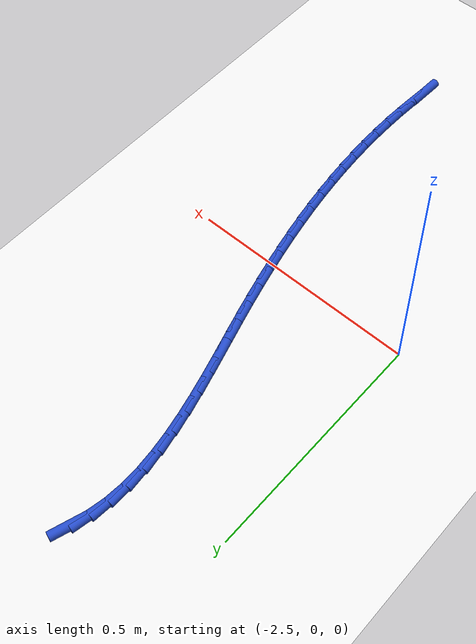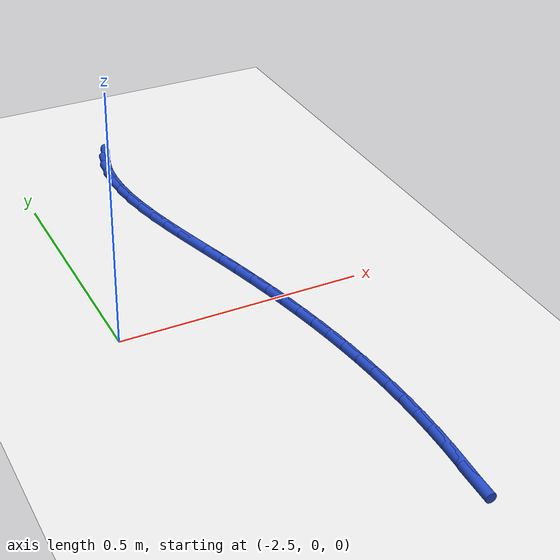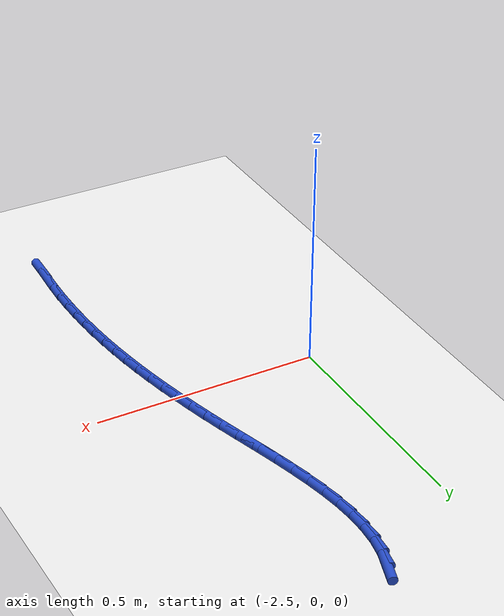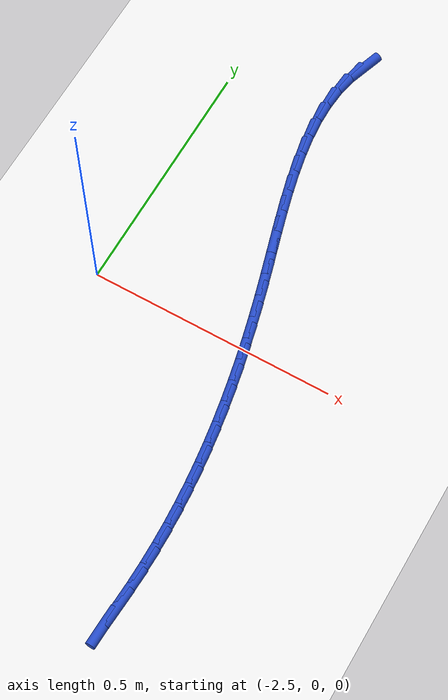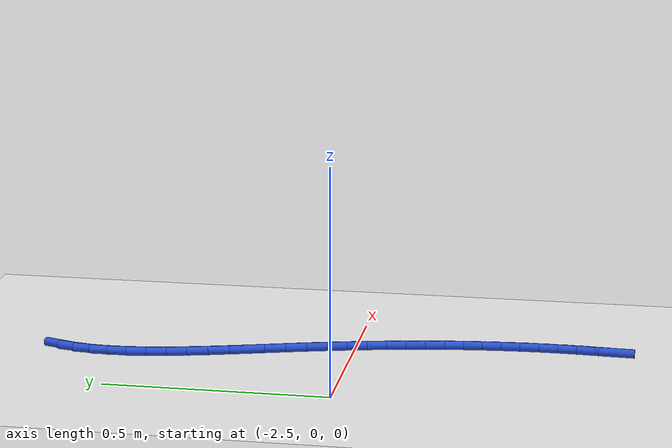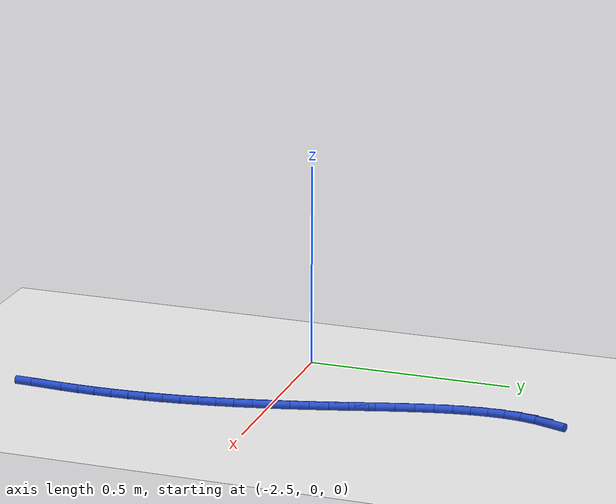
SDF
<sdf version="1.6">
 <world name="default">
  <model name="ground_plane">
   <static>1</static>
   <link name="link">
    <collision name="collision">
     <geometry><plane><normal>0 0 1</normal><size>100 100</size></plane></geometry>
     <surface><friction><ode><mu>100</mu><mu2>50</mu2></ode></friction></surface>
    </collision>
    <visual name="visual">
     <cast_shadows>0</cast_shadows>
     <geometry><plane><normal>0 0 1</normal><size>100 100</size></plane></geometry>
     <material>
      <script><uri>file://media/materials/scripts/gazebo.material</uri><name>Gazebo/WhiteGlow</name></script>
     </material>
    </visual>
   </link>
  </model>
  <model name="line">
   <link name="link_74">
    <pose>-2.276247300363723 0.6588571933269307 0.01 0 1.57 1.2483466097020197</pose>
    <collision name="collision">
     <geometry><cylinder><radius>0.01</radius><length>0.08</length></cylinder></geometry>
    </collision>
    <visual name="visual">
     <material>
      <script><name>Gazebo/Blue</name><uri>file://media/materials/scripts/gazebo.material</uri></script>
     </material>
     <geometry><cylinder><radius>0.01</radius><length>0.08</length></cylinder></geometry>
    </visual>
   </link>
   <link name="link_75">
    <pose>-2.288401629549055 0.6224790064519751 0.01 0 1.57 1.3798382819112682</pose>
    <collision name="collision">
     <geometry><cylinder><radius>0.01</radius><length>0.08</length></cylinder></geometry>
    </collision>
    <visual name="visual">
     <material>
      <script><name>Gazebo/Blue</name><uri>file://media/materials/scripts/gazebo.material</uri></script>
     </material>
     <geometry><cylinder><radius>0.01</radius><length>0.08</length></cylinder></geometry>
    </visual>
   </link>
   <link name="link_76">
    <pose>-2.2957980456538354 0.5842177568848022 0.01 0 1.57 1.4925973870832785</pose>
    <collision name="collision">
     <geometry><cylinder><radius>0.01</radius><length>0.08</length></cylinder></geometry>
    </collision>
    <visual name="visual">
     <material>
      <script><name>Gazebo/Blue</name><uri>file://media/materials/scripts/gazebo.material</uri></script>
     </material>
     <geometry><cylinder><radius>0.01</radius><length>0.08</length></cylinder></geometry>
    </visual>
   </link>
   <link name="link_77">
    <pose>-2.298926851265602 0.5442885021447703 0.01 0 1.57 -1.5551427515717582</pose>
    <collision name="collision">
     <geometry><cylinder><radius>0.01</radius><length>0.08</length></cylinder></geometry>
    </collision>
    <visual name="visual">
     <material>
      <script><name>Gazebo/Blue</name><uri>file://media/materials/scripts/gazebo.material</uri></script>
     </material>
     <geometry><cylinder><radius>0.01</radius><length>0.08</length></cylinder></geometry>
    </visual>
   </link>
   <link name="link_78">
    <pose>-2.298279022993758 0.5029065591484996 0.01 0 1.57 -1.4787635536452637</pose>
    <collision name="collision">
     <geometry><cylinder><radius>0.01</radius><length>0.08</length></cylinder></geometry>
    </collision>
    <visual name="visual">
     <material>
      <script><name>Gazebo/Blue</name><uri>file://media/materials/scripts/gazebo.material</uri></script>
     </material>
     <geometry><cylinder><radius>0.01</radius><length>0.08</length></cylinder></geometry>
    </visual>
   </link>
   <link name="link_79">
    <pose>-2.29434553744771 0.4602872448126084 0.01 0 1.57 -1.4178311838814692</pose>
    <collision name="collision">
     <geometry><cylinder><radius>0.01</radius><length>0.08</length></cylinder></geometry>
    </collision>
    <visual name="visual">
     <material>
      <script><name>Gazebo/Blue</name><uri>file://media/materials/scripts/gazebo.material</uri></script>
     </material>
     <geometry><cylinder><radius>0.01</radius><length>0.08</length></cylinder></geometry>
    </visual>
   </link>
   <link name="link_80">
    <pose>-2.2876173712368617 0.4166458760537148 0.01 0 1.57 -1.3703254202163098</pose>
    <collision name="collision">
     <geometry><cylinder><radius>0.01</radius><length>0.08</length></cylinder></geometry>
    </collision>
    <visual name="visual">
     <material>
      <script><name>Gazebo/Blue</name><uri>file://media/materials/scripts/gazebo.material</uri></script>
     </material>
     <geometry><cylinder><radius>0.01</radius><length>0.08</length></cylinder></geometry>
    </visual>
   </link>
   <link name="link_81">
    <pose>-2.2785855009706184 0.37219776978843866 0.01 0 1.57 -1.3345143683876064</pose>
    <collision name="collision">
     <geometry><cylinder><radius>0.01</radius><length>0.08</length></cylinder></geometry>
    </collision>
    <visual name="visual">
     <material>
      <script><name>Gazebo/Blue</name><uri>file://media/materials/scripts/gazebo.material</uri></script>
     </material>
     <geometry><cylinder><radius>0.01</radius><length>0.08</length></cylinder></geometry>
    </visual>
   </link>
   <link name="link_82">
    <pose>-2.267740903258385 0.3271582429333982 0.01 0 1.57 -1.3090530857161469</pose>
    <collision name="collision">
     <geometry><cylinder><radius>0.01</radius><length>0.08</length></cylinder></geometry>
    </collision>
    <visual name="visual">
     <material>
      <script><name>Gazebo/Blue</name><uri>file://media/materials/scripts/gazebo.material</uri></script>
     </material>
     <geometry><cylinder><radius>0.01</radius><length>0.08</length></cylinder></geometry>
    </visual>
   </link>
   <link name="link_83">
    <pose>-2.255574554709565 0.28174261240521187 0.01 0 1.57 -1.292998002574511</pose>
    <collision name="collision">
     <geometry><cylinder><radius>0.01</radius><length>0.08</length></cylinder></geometry>
    </collision>
    <visual name="visual">
     <material>
      <script><name>Gazebo/Blue</name><uri>file://media/materials/scripts/gazebo.material</uri></script>
     </material>
     <geometry><cylinder><radius>0.01</radius><length>0.08</length></cylinder></geometry>
    </visual>
   </link>
   <link name="link_84">
    <pose>-2.242577431933565 0.23616619512049924 0.01 0 1.57 -1.285793938191027</pose>
    <collision name="collision">
     <geometry><cylinder><radius>0.01</radius><length>0.08</length></cylinder></geometry>
    </collision>
    <visual name="visual">
     <material>
      <script><name>Gazebo/Blue</name><uri>file://media/materials/scripts/gazebo.material</uri></script>
     </material>
     <geometry><cylinder><radius>0.01</radius><length>0.08</length></cylinder></geometry>
    </visual>
   </link>
   <link name="link_85">
    <pose>-2.229240511539788 0.19064430799587825 0.01 0 1.57 -1.2872623159425105</pose>
    <collision name="collision">
     <geometry><cylinder><radius>0.01</radius><length>0.08</length></cylinder></geometry>
    </collision>
    <visual name="visual">
     <material>
      <script><name>Gazebo/Blue</name><uri>file://media/materials/scripts/gazebo.material</uri></script>
     </material>
     <geometry><cylinder><radius>0.01</radius><length>0.08</length></cylinder></geometry>
    </visual>
   </link>
   <link name="link_86">
    <pose>-2.2160547701376396 0.1453922679479685 0.01 0 1.57 -1.2971407614984025</pose>
    <collision name="collision">
     <geometry><cylinder><radius>0.01</radius><length>0.08</length></cylinder></geometry>
    </collision>
    <visual name="visual">
     <material>
      <script><name>Gazebo/Blue</name><uri>file://media/materials/scripts/gazebo.material</uri></script>
     </material>
     <geometry><cylinder><radius>0.01</radius><length>0.08</length></cylinder></geometry>
    </visual>
   </link>
   <link name="link_87">
    <pose>-2.203484423102124 0.10060976023308109 0.01 0 1.57 -1.3110449391627164</pose>
    <collision name="collision">
     <geometry><cylinder><radius>0.01</radius><length>0.08</length></cylinder></geometry>
    </collision>
    <visual name="visual">
     <material>
      <script><name>Gazebo/Blue</name><uri>file://media/materials/scripts/gazebo.material</uri></script>
     </material>
     <geometry><cylinder><radius>0.01</radius><length>0.08</length></cylinder></geometry>
    </visual>
   </link>
   <link name="link_88">
    <pose>-2.191718337212826 0.05633563463763891 0.01 0 1.57 -1.326255936100532</pose>
    <collision name="collision">
     <geometry><cylinder><radius>0.01</radius><length>0.08</length></cylinder></geometry>
    </collision>
    <visual name="visual">
     <material>
      <script><name>Gazebo/Blue</name><uri>file://media/materials/scripts/gazebo.material</uri></script>
     </material>
     <geometry><cylinder><radius>0.01</radius><length>0.08</length></cylinder></geometry>
    </visual>
   </link>
   <link name="link_89">
    <pose>-2.1807833578746454 0.012514101700352049 0.01 0 1.57 -1.3427355925341087</pose>
    <collision name="collision">
     <geometry><cylinder><radius>0.01</radius><length>0.08</length></cylinder></geometry>
    </collision>
    <visual name="visual">
     <material>
      <script><name>Gazebo/Blue</name><uri>file://media/materials/scripts/gazebo.material</uri></script>
     </material>
     <geometry><cylinder><radius>0.01</radius><length>0.08</length></cylinder></geometry>
    </visual>
   </link>
   <link name="link_90">
    <pose>-2.1707042525929903 -0.03091184177403019 0.01 0 1.57 -1.3604695841716787</pose>
    <collision name="collision">
     <geometry><cylinder><radius>0.01</radius><length>0.08</length></cylinder></geometry>
    </collision>
    <visual name="visual">
     <material>
      <script><name>Gazebo/Blue</name><uri>file://media/materials/scripts/gazebo.material</uri></script>
     </material>
     <geometry><cylinder><radius>0.01</radius><length>0.08</length></cylinder></geometry>
    </visual>
   </link>
   <link name="link_91">
    <pose>-2.161505788873269 -0.073999198980758 0.01 0 1.57 -1.3794302425623906</pose>
    <collision name="collision">
     <geometry><cylinder><radius>0.01</radius><length>0.08</length></cylinder></geometry>
    </collision>
    <visual name="visual">
     <material>
      <script><name>Gazebo/Blue</name><uri>file://media/materials/scripts/gazebo.material</uri></script>
     </material>
     <geometry><cylinder><radius>0.01</radius><length>0.08</length></cylinder></geometry>
    </visual>
   </link>
   <link name="link_92">
    <pose>-2.153212734220891 -0.11680497311508248 0.01 0 1.57 -1.399575538519988</pose>
    <collision name="collision">
     <geometry><cylinder><radius>0.01</radius><length>0.08</length></cylinder></geometry>
    </collision>
    <visual name="visual">
     <material>
      <script><name>Gazebo/Blue</name><uri>file://media/materials/scripts/gazebo.material</uri></script>
     </material>
     <geometry><cylinder><radius>0.01</radius><length>0.08</length></cylinder></geometry>
    </visual>
   </link>
   <link name="link_93">
    <pose>-2.1458498561412647 -0.15938616737225195 0.01 0 1.57 -1.420848360706223</pose>
    <collision name="collision">
     <geometry><cylinder><radius>0.01</radius><length>0.08</length></cylinder></geometry>
    </collision>
    <visual name="visual">
     <material>
      <script><name>Gazebo/Blue</name><uri>file://media/materials/scripts/gazebo.material</uri></script>
     </material>
     <geometry><cylinder><radius>0.01</radius><length>0.08</length></cylinder></geometry>
    </visual>
   </link>
   <link name="link_94">
    <pose>-2.1394419221398 -0.20179978494751763 0.01 0 1.57 -1.4431761792556823</pose>
    <collision name="collision">
     <geometry><cylinder><radius>0.01</radius><length>0.08</length></cylinder></geometry>
    </collision>
    <visual name="visual">
     <material>
      <script><name>Gazebo/Blue</name><uri>file://media/materials/scripts/gazebo.material</uri></script>
     </material>
     <geometry><cylinder><radius>0.01</radius><length>0.08</length></cylinder></geometry>
    </visual>
   </link>
   <link name="link_95">
    <pose>-2.1340136997219044 -0.24410282903612962 0.01 0 1.57 -1.4664711761413665</pose>
    <collision name="collision">
     <geometry><cylinder><radius>0.01</radius><length>0.08</length></cylinder></geometry>
    </collision>
    <visual name="visual">
     <material>
      <script><name>Gazebo/Blue</name><uri>file://media/materials/scripts/gazebo.material</uri></script>
     </material>
     <geometry><cylinder><radius>0.01</radius><length>0.08</length></cylinder></geometry>
    </visual>
   </link>
   <link name="link_96">
    <pose>-2.1295899563929863 -0.28635230283333807 0.01 0 1.57 -1.4906309060000982</pose>
    <collision name="collision">
     <geometry><cylinder><radius>0.01</radius><length>0.08</length></cylinder></geometry>
    </collision>
    <visual name="visual">
     <material>
      <script><name>Gazebo/Blue</name><uri>file://media/materials/scripts/gazebo.material</uri></script>
     </material>
     <geometry><cylinder><radius>0.01</radius><length>0.08</length></cylinder></geometry>
    </visual>
   </link>
   <link name="link_97">
    <pose>-2.126195459658456 -0.3286052095343933 0.01 0 1.57 -1.5155395231820463</pose>
    <collision name="collision">
     <geometry><cylinder><radius>0.01</radius><length>0.08</length></cylinder></geometry>
    </collision>
    <visual name="visual">
     <material>
      <script><name>Gazebo/Blue</name><uri>file://media/materials/scripts/gazebo.material</uri></script>
     </material>
     <geometry><cylinder><radius>0.01</radius><length>0.08</length></cylinder></geometry>
    </visual>
   </link>
   <link name="link_98">
    <pose>-2.1238549770237203 -0.3709185523345462 0.01 0 1.57 -1.541069574215935</pose>
    <collision name="collision">
     <geometry><cylinder><radius>0.01</radius><length>0.08</length></cylinder></geometry>
    </collision>
    <visual name="visual">
     <material>
      <script><name>Gazebo/Blue</name><uri>file://media/materials/scripts/gazebo.material</uri></script>
     </material>
     <geometry><cylinder><radius>0.01</radius><length>0.08</length></cylinder></geometry>
    </visual>
   </link>
   <link name="link_99">
    <pose>-2.12259327599419 -0.4133493344290453 0.01 0 1.57 -1.5670843127387288</pose>
    <collision name="collision">
     <geometry><cylinder><radius>0.01</radius><length>0.08</length></cylinder></geometry>
    </collision>
    <visual name="visual">
     <material>
      <script><name>Gazebo/Blue</name><uri>file://media/materials/scripts/gazebo.material</uri></script>
     </material>
     <geometry><cylinder><radius>0.01</radius><length>0.08</length></cylinder></geometry>
    </visual>
   </link>
   <link name="link_100">
    <pose>-2.1224351240752726 -0.45595455901314164 0.01 0 1.57 1.5481522028240888</pose>
    <collision name="collision">
     <geometry><cylinder><radius>0.01</radius><length>0.08</length></cylinder></geometry>
    </collision>
    <visual name="visual">
     <material>
      <script><name>Gazebo/Blue</name><uri>file://media/materials/scripts/gazebo.material</uri></script>
     </material>
     <geometry><cylinder><radius>0.01</radius><length>0.08</length></cylinder></geometry>
    </visual>
   </link>
   <link name="link_101">
    <pose>-2.1234052887723776 -0.4987912292820855 0.01 0 1.57 1.5217363716668848</pose>
    <collision name="collision">
     <geometry><cylinder><radius>0.01</radius><length>0.08</length></cylinder></geometry>
    </collision>
    <visual name="visual">
     <material>
      <script><name>Gazebo/Blue</name><uri>file://media/materials/scripts/gazebo.material</uri></script>
     </material>
     <geometry><cylinder><radius>0.01</radius><length>0.08</length></cylinder></geometry>
    </visual>
   </link>
   <link name="link_102">
    <pose>-2.1255226437878743 -0.5419151171472475 0.01 0 1.57 1.5086123524679267</pose>
    <collision name="collision">
     <geometry><cylinder><radius>0.01</radius><length>0.08</length></cylinder></geometry>
    </collision>
    <visual name="visual">
     <material>
      <script><name>Gazebo/Blue</name><uri>file://media/materials/scripts/gazebo.material</uri></script>
     </material>
     <geometry><cylinder><radius>0.01</radius><length>0.08</length></cylinder></geometry>
    </visual>
   </link>
   <link name="link_103">
    <pose>-2.1282214721324975 -0.5852598667376586 0.01 0 1.57 1.5328590999233969</pose>
    <collision name="collision">
     <geometry><cylinder><radius>0.01</radius><length>0.08</length></cylinder></geometry>
    </collision>
    <visual name="visual">
     <material>
      <script><name>Gazebo/Blue</name><uri>file://media/materials/scripts/gazebo.material</uri></script>
     </material>
     <geometry><cylinder><radius>0.01</radius><length>0.08</length></cylinder></geometry>
    </visual>
   </link>
  </model>
 </world>
</sdf>
